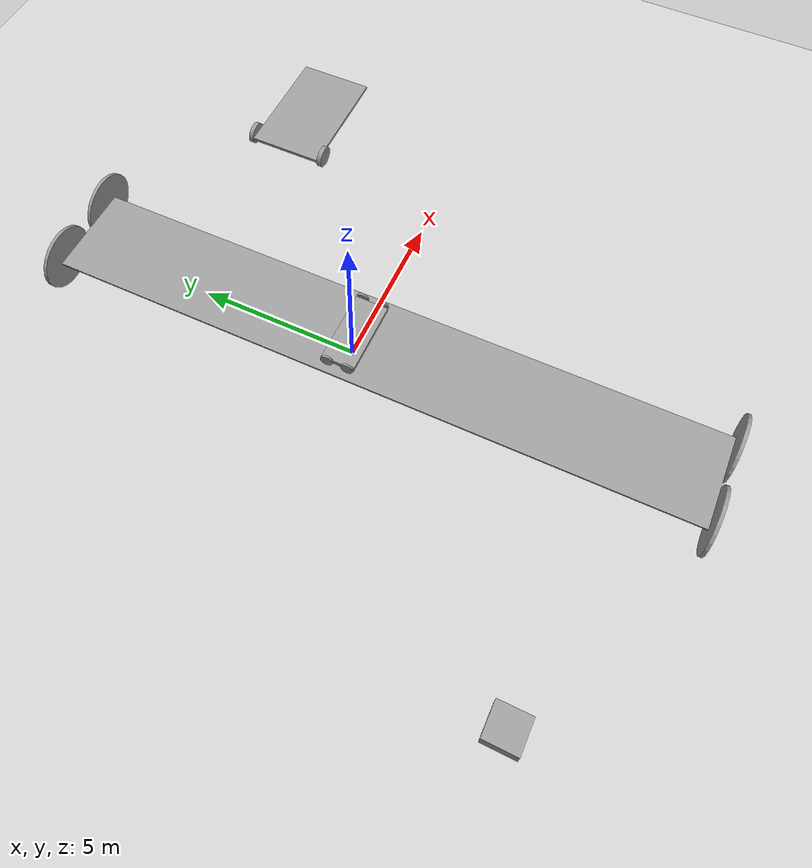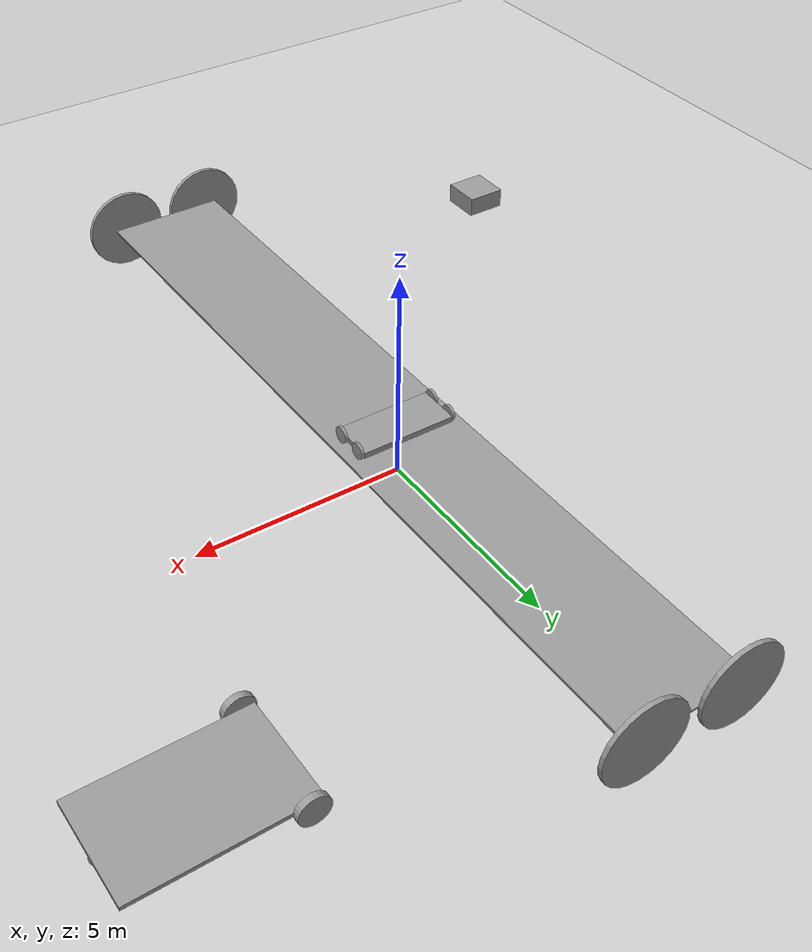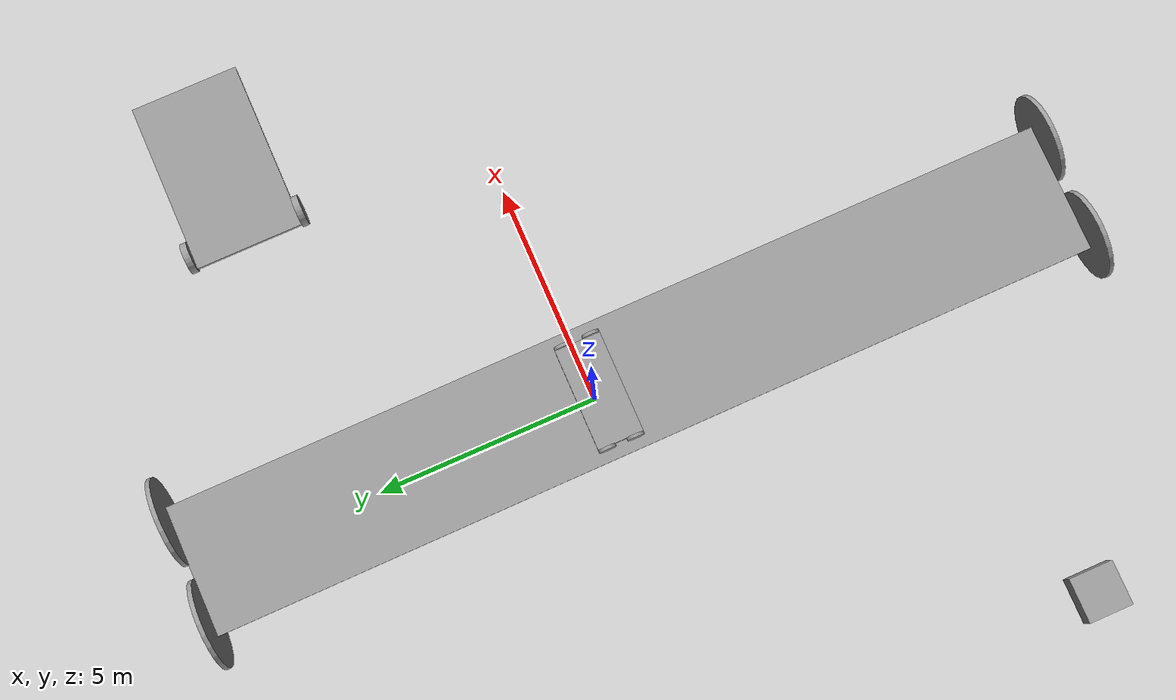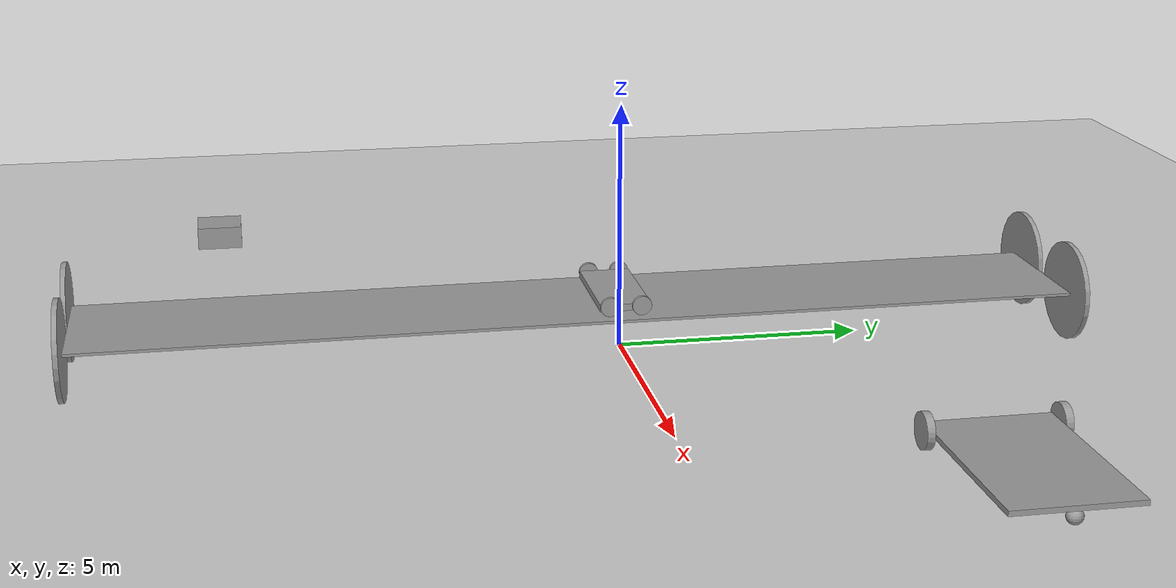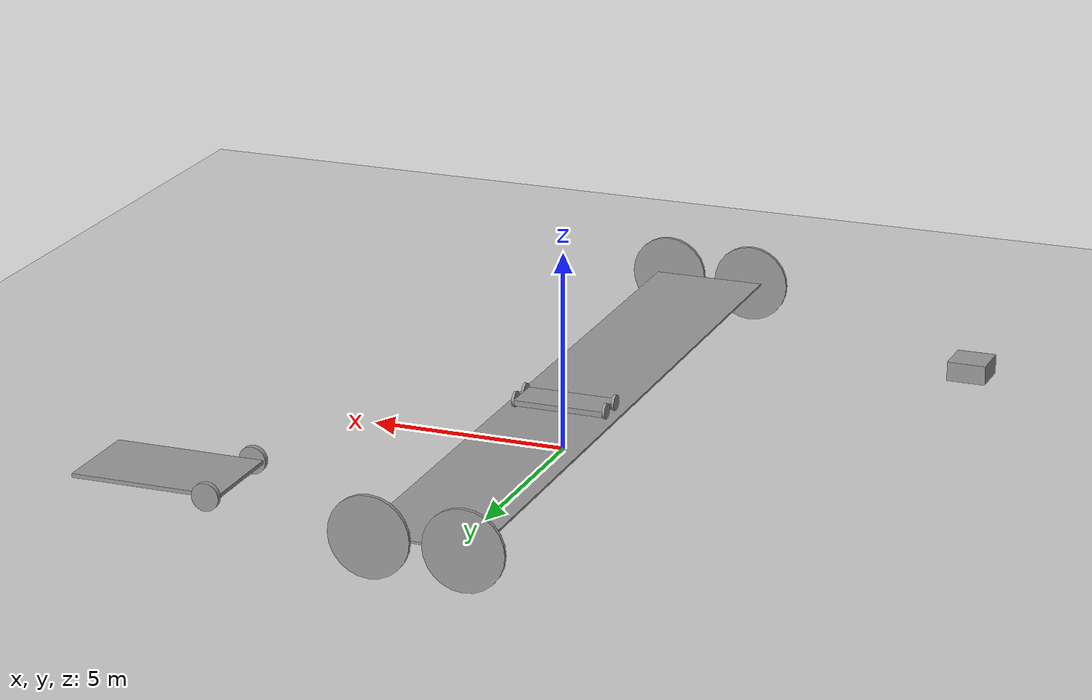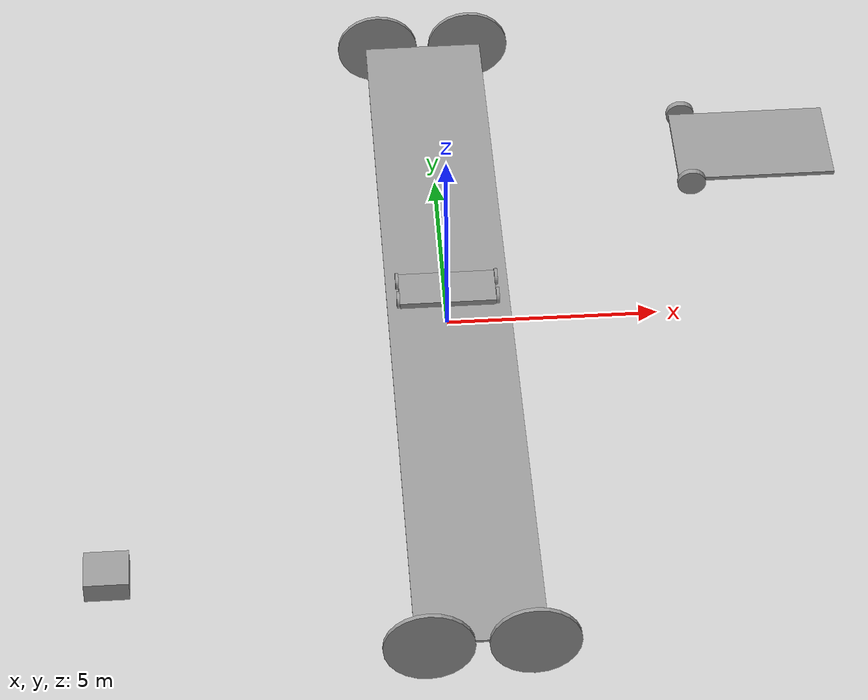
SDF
<sdf version="1.7">
 <world name="default">
  <light name="sun" type="directional">
   <pose>0 0 10 0 -0 0</pose>
   <diffuse>0.8 0.8 0.8 1</diffuse>
   <specular>0.2 0.2 0.2 1</specular>
   <attenuation>
    <range>1000</range>
    <constant>0.9</constant>
    <linear>0.01</linear>
    <quadratic>0.001</quadratic>
   </attenuation>
   <direction>-0.5 0.1 -0.9</direction>
   <spot><inner_angle>0</inner_angle><outer_angle>0</outer_angle><falloff>0</falloff></spot>
  </light>
  <model name="ground_plane">
   <static>1</static>
   <link name="link">
    <collision name="collision">
     <geometry><plane><normal>0 0 1</normal><size>100 100</size></plane></geometry>
     <surface>
      <contact><collide_bitmask>65535</collide_bitmask></contact>
      <friction><ode><mu>100</mu><mu2>50</mu2></ode></friction>
     </surface>
    </collision>
    <visual name="visual">
     <cast_shadows>0</cast_shadows>
     <geometry><plane><normal>0 0 1</normal><size>100 100</size></plane></geometry>
     <material>
      <script><uri>file://media/materials/scripts/gazebo.material</uri><name>Gazebo/Grey</name></script>
     </material>
    </visual>
   </link>
  </model>
  <gravity>0 0 -9.8</gravity>
  <magnetic_field>6e-06 2.3e-05 -4.2e-05</magnetic_field>
  <atmosphere type="adiabatic"/>
  <physics type="ode">
   <max_step_size>0.001</max_step_size>
   <real_time_factor>1</real_time_factor>
   <real_time_update_rate>1000</real_time_update_rate>
  </physics>
  <scene><ambient>0.4 0.4 0.4 1</ambient><background>0.7 0.7 0.7 1</background><shadows>1</shadows></scene>
  <spherical_coordinates>
   <surface_model>EARTH_WGS84</surface_model>
   <latitude_deg>0</latitude_deg>
   <longitude_deg>0</longitude_deg>
   <elevation>0</elevation>
   <heading_deg>0</heading_deg>
  </spherical_coordinates>
  <model name="cart">
   <link name="Cart">
    <inertial>
     <mass>0.323225</mass>
     <inertia>
      <ixx>0.0288014</ixx>
      <ixy>0</ixy>
      <ixz>0</ixz>
      <iyy>0.139331</iyy>
      <iyz>0</iyz>
      <izz>0.167093</izz>
     </inertia>
    </inertial>
    <pose>1e-06 -0 0.087098 0 -0 0</pose>
    <visual name="visual">
     <geometry><box><size>2.27013 1.02468 0.138944</size></box></geometry>
     <material>
      <lighting>1</lighting>
      <script><uri>file://media/materials/scripts/gazebo.material</uri><name>Gazebo/Grey</name></script>
      <shader type="pixel"><normal_map>__default__</normal_map></shader>
      <ambient>0.3 0.3 0.3 1</ambient>
      <diffuse>0.7 0.7 0.7 1</diffuse>
      <specular>0.01 0.01 0.01 1</specular>
      <emissive>0 0 0 1</emissive>
     </material>
    </visual>
    <collision name="collision">
     <geometry><box><size>2.27013 1.02468 0.138944</size></box></geometry>
     <surface>
      <friction>
       <ode><mu>1</mu><mu2>1</mu2><fdir1>0 0 0</fdir1><slip1>0</slip1><slip2>0</slip2></ode>
       <torsional>
        <coefficient>1</coefficient>
        <patch_radius>0</patch_radius>
        <surface_radius>0</surface_radius>
        <use_patch_radius>1</use_patch_radius>
        <ode><slip>0</slip></ode>
       </torsional>
      </friction>
      <bounce><restitution_coefficient>0</restitution_coefficient><threshold>1e+06</threshold></bounce>
      <contact>
       <collide_without_contact>0</collide_without_contact>
       <collide_without_contact_bitmask>1</collide_without_contact_bitmask>
       <collide_bitmask>1</collide_bitmask>
       <ode>
        <soft_cfm>0</soft_cfm>
        <soft_erp>0.2</soft_erp>
        <kp>1e+13</kp>
        <kd>1</kd>
        <max_vel>0.01</max_vel>
        <min_depth>0</min_depth>
       </ode>
       <bullet>
        <split_impulse>1</split_impulse>
        <split_impulse_penetration_threshold>-0.01</split_impulse_penetration_threshold>
        <soft_cfm>0</soft_cfm>
        <soft_erp>0.2</soft_erp>
        <kp>1e+13</kp>
        <kd>1</kd>
       </bullet>
      </contact>
     </surface>
    </collision>
   </link>
   <link name="LeftWheelFree">
    <inertial>
     <mass>0.0104167</mass>
     <inertia>
      <ixx>0.000101722</ixx>
      <ixy>0</ixy>
      <ixz>0</ixz>
      <iyy>0.000101722</iyy>
      <iyz>0</iyz>
      <izz>0.000195047</izz>
     </inertia>
    </inertial>
    <pose>1.16984 0.318823 0.122361 1e-06 1.57079 1e-06</pose>
    <visual name="visual">
     <geometry><cylinder><radius>0.193517</radius><length>0.0695489</length></cylinder></geometry>
     <material>
      <lighting>1</lighting>
      <script><uri>file://media/materials/scripts/gazebo.material</uri><name>Gazebo/Grey</name></script>
      <shader type="pixel"><normal_map>__default__</normal_map></shader>
      <ambient>0.3 0.3 0.3 1</ambient>
      <diffuse>0.7 0.7 0.7 1</diffuse>
      <specular>0.01 0.01 0.01 1</specular>
      <emissive>0 0 0 1</emissive>
     </material>
    </visual>
    <collision name="collision">
     <geometry><cylinder><radius>0.193517</radius><length>0.069549</length></cylinder></geometry>
     <surface>
      <friction>
       <ode><mu>1</mu><mu2>1</mu2><fdir1>0 0 0</fdir1><slip1>0</slip1><slip2>0</slip2></ode>
       <torsional>
        <coefficient>1</coefficient>
        <patch_radius>0</patch_radius>
        <surface_radius>0</surface_radius>
        <use_patch_radius>1</use_patch_radius>
        <ode><slip>0</slip></ode>
       </torsional>
      </friction>
      <bounce><restitution_coefficient>0</restitution_coefficient><threshold>1e+06</threshold></bounce>
      <contact>
       <collide_without_contact>0</collide_without_contact>
       <collide_without_contact_bitmask>1</collide_without_contact_bitmask>
       <collide_bitmask>1</collide_bitmask>
       <ode>
        <soft_cfm>0</soft_cfm>
        <soft_erp>0.2</soft_erp>
        <kp>1e+13</kp>
        <kd>1</kd>
        <max_vel>0.01</max_vel>
        <min_depth>0</min_depth>
       </ode>
       <bullet>
        <split_impulse>1</split_impulse>
        <split_impulse_penetration_threshold>-0.01</split_impulse_penetration_threshold>
        <soft_cfm>0</soft_cfm>
        <soft_erp>0.2</soft_erp>
        <kp>1e+13</kp>
        <kd>1</kd>
       </bullet>
      </contact>
     </surface>
    </collision>
   </link>
   <link name="LeftWheelMotor">
    <inertial>
     <mass>0.0104167</mass>
     <inertia>
      <ixx>0.000101722</ixx>
      <ixy>0</ixy>
      <ixz>0</ixz>
      <iyy>0.000101722</iyy>
      <iyz>0</iyz>
      <izz>0.000195047</izz>
     </inertia>
    </inertial>
    <pose>1.16984 -0.318823 0.122362 1e-06 1.57079 1e-06</pose>
    <visual name="visual">
     <geometry><cylinder><radius>0.193517</radius><length>0.0695489</length></cylinder></geometry>
     <material>
      <lighting>1</lighting>
      <script><uri>file://media/materials/scripts/gazebo.material</uri><name>Gazebo/Grey</name></script>
      <shader type="pixel"><normal_map>__default__</normal_map></shader>
      <ambient>0.3 0.3 0.3 1</ambient>
      <diffuse>0.7 0.7 0.7 1</diffuse>
      <specular>0.01 0.01 0.01 1</specular>
      <emissive>0 0 0 1</emissive>
     </material>
    </visual>
    <collision name="collision">
     <geometry><cylinder><radius>0.193517</radius><length>0.069549</length></cylinder></geometry>
     <surface>
      <friction>
       <ode><mu>1</mu><mu2>1</mu2><fdir1>0 0 0</fdir1><slip1>0</slip1><slip2>0</slip2></ode>
       <torsional>
        <coefficient>1</coefficient>
        <patch_radius>0</patch_radius>
        <surface_radius>0</surface_radius>
        <use_patch_radius>1</use_patch_radius>
        <ode><slip>0</slip></ode>
       </torsional>
      </friction>
      <bounce><restitution_coefficient>0</restitution_coefficient><threshold>1e+06</threshold></bounce>
      <contact>
       <collide_without_contact>0</collide_without_contact>
       <collide_without_contact_bitmask>1</collide_without_contact_bitmask>
       <collide_bitmask>1</collide_bitmask>
       <ode>
        <soft_cfm>0</soft_cfm>
        <soft_erp>0.2</soft_erp>
        <kp>1e+13</kp>
        <kd>1</kd>
        <max_vel>0.01</max_vel>
        <min_depth>0</min_depth>
       </ode>
       <bullet>
        <split_impulse>1</split_impulse>
        <split_impulse_penetration_threshold>-0.01</split_impulse_penetration_threshold>
        <soft_cfm>0</soft_cfm>
        <soft_erp>0.2</soft_erp>
        <kp>1e+13</kp>
        <kd>1</kd>
       </bullet>
      </contact>
     </surface>
    </collision>
   </link>
   <link name="RightWheelFree">
    <inertial>
     <mass>0.0104167</mass>
     <inertia>
      <ixx>0.000101722</ixx>
      <ixy>0</ixy>
      <ixz>0</ixz>
      <iyy>0.000101722</iyy>
      <iyz>0</iyz>
      <izz>0.000195047</izz>
     </inertia>
    </inertial>
    <pose>-1.16984 0.318823 0.122362 1e-06 1.57079 1e-06</pose>
    <visual name="visual">
     <geometry><cylinder><radius>0.193517</radius><length>0.0695489</length></cylinder></geometry>
     <material>
      <lighting>1</lighting>
      <script><uri>file://media/materials/scripts/gazebo.material</uri><name>Gazebo/Grey</name></script>
      <shader type="pixel"><normal_map>__default__</normal_map></shader>
      <ambient>0.3 0.3 0.3 1</ambient>
      <diffuse>0.7 0.7 0.7 1</diffuse>
      <specular>0.01 0.01 0.01 1</specular>
      <emissive>0 0 0 1</emissive>
     </material>
    </visual>
    <collision name="collision">
     <geometry><cylinder><radius>0.193517</radius><length>0.069549</length></cylinder></geometry>
     <surface>
      <friction>
       <ode><mu>1</mu><mu2>1</mu2><fdir1>0 0 0</fdir1><slip1>0</slip1><slip2>0</slip2></ode>
       <torsional>
        <coefficient>1</coefficient>
        <patch_radius>0</patch_radius>
        <surface_radius>0</surface_radius>
        <use_patch_radius>1</use_patch_radius>
        <ode><slip>0</slip></ode>
       </torsional>
      </friction>
      <bounce><restitution_coefficient>0</restitution_coefficient><threshold>1e+06</threshold></bounce>
      <contact>
       <collide_without_contact>0</collide_without_contact>
       <collide_without_contact_bitmask>1</collide_without_contact_bitmask>
       <collide_bitmask>1</collide_bitmask>
       <ode>
        <soft_cfm>0</soft_cfm>
        <soft_erp>0.2</soft_erp>
        <kp>1e+13</kp>
        <kd>1</kd>
        <max_vel>0.01</max_vel>
        <min_depth>0</min_depth>
       </ode>
       <bullet>
        <split_impulse>1</split_impulse>
        <split_impulse_penetration_threshold>-0.01</split_impulse_penetration_threshold>
        <soft_cfm>0</soft_cfm>
        <soft_erp>0.2</soft_erp>
        <kp>1e+13</kp>
        <kd>1</kd>
       </bullet>
      </contact>
     </surface>
    </collision>
   </link>
   <link name="RightWheelMotor">
    <inertial>
     <mass>0.0104167</mass>
     <inertia>
      <ixx>0.000101722</ixx>
      <ixy>0</ixy>
      <ixz>0</ixz>
      <iyy>0.000101722</iyy>
      <iyz>0</iyz>
      <izz>0.000195047</izz>
     </inertia>
    </inertial>
    <pose>-1.16984 -0.318823 0.122362 1e-06 1.57079 1e-06</pose>
    <visual name="visual">
     <geometry><cylinder><radius>0.193517</radius><length>0.0695489</length></cylinder></geometry>
     <material>
      <lighting>1</lighting>
      <script><uri>file://media/materials/scripts/gazebo.material</uri><name>Gazebo/Grey</name></script>
      <shader type="pixel"><normal_map>__default__</normal_map></shader>
      <ambient>0.3 0.3 0.3 1</ambient>
      <diffuse>0.7 0.7 0.7 1</diffuse>
      <specular>0.01 0.01 0.01 1</specular>
      <emissive>0 0 0 1</emissive>
     </material>
    </visual>
    <collision name="collision">
     <geometry><cylinder><radius>0.193517</radius><length>0.069549</length></cylinder></geometry>
     <surface>
      <friction>
       <ode><mu>1</mu><mu2>1</mu2><fdir1>0 0 0</fdir1><slip1>0</slip1><slip2>0</slip2></ode>
       <torsional>
        <coefficient>1</coefficient>
        <patch_radius>0</patch_radius>
        <surface_radius>0</surface_radius>
        <use_patch_radius>1</use_patch_radius>
        <ode><slip>0</slip></ode>
       </torsional>
      </friction>
      <bounce><restitution_coefficient>0</restitution_coefficient><threshold>1e+06</threshold></bounce>
      <contact>
       <collide_without_contact>0</collide_without_contact>
       <collide_without_contact_bitmask>1</collide_without_contact_bitmask>
       <collide_bitmask>1</collide_bitmask>
       <ode>
        <soft_cfm>0</soft_cfm>
        <soft_erp>0.2</soft_erp>
        <kp>1e+13</kp>
        <kd>1</kd>
        <max_vel>0.01</max_vel>
        <min_depth>0</min_depth>
       </ode>
       <bullet>
        <split_impulse>1</split_impulse>
        <split_impulse_penetration_threshold>-0.01</split_impulse_penetration_threshold>
        <soft_cfm>0</soft_cfm>
        <soft_erp>0.2</soft_erp>
        <kp>1e+13</kp>
        <kd>1</kd>
       </bullet>
      </contact>
     </surface>
    </collision>
   </link>
   <joint name="Cart_LeftWheelFree" type="revolute">
    <parent>Cart</parent>
    <child>LeftWheelFree</child>
    <axis>
     <xyz>0 0 1</xyz>
     <limit>
      <lower>-1.79769e+308</lower>
      <upper>1.79769e+308</upper>
      <effort>-1</effort>
      <velocity>-1</velocity>
     </limit>
     <dynamics>
      <spring_reference>0</spring_reference>
      <spring_stiffness>0</spring_stiffness>
      <damping>0</damping>
      <friction>0</friction>
     </dynamics>
    </axis>
    <physics>
     <ode><limit><cfm>0</cfm><erp>0.2</erp></limit><suspension><cfm>0</cfm><erp>0.2</erp></suspension></ode>
    </physics>
   </joint>
   <joint name="Cart_LeftWheelMotor" type="revolute">
    <parent>Cart</parent>
    <child>LeftWheelMotor</child>
    <axis>
     <xyz>0 0 1</xyz>
     <limit>
      <lower>-1.79769e+308</lower>
      <upper>1.79769e+308</upper>
      <effort>-1</effort>
      <velocity>-1</velocity>
     </limit>
     <dynamics>
      <spring_reference>0</spring_reference>
      <spring_stiffness>0</spring_stiffness>
      <damping>0</damping>
      <friction>0</friction>
     </dynamics>
    </axis>
    <physics>
     <ode><limit><cfm>0</cfm><erp>0.2</erp></limit><suspension><cfm>0</cfm><erp>0.2</erp></suspension></ode>
    </physics>
   </joint>
   <joint name="Cart_RightWheelFree" type="revolute">
    <parent>Cart</parent>
    <child>RightWheelFree</child>
    <axis>
     <xyz>0 0 1</xyz>
     <limit>
      <lower>-1.79769e+308</lower>
      <upper>1.79769e+308</upper>
      <effort>-1</effort>
      <velocity>-1</velocity>
     </limit>
     <dynamics>
      <spring_reference>0</spring_reference>
      <spring_stiffness>0</spring_stiffness>
      <damping>0</damping>
      <friction>0</friction>
     </dynamics>
    </axis>
    <physics>
     <ode><limit><cfm>0</cfm><erp>0.2</erp></limit><suspension><cfm>0</cfm><erp>0.2</erp></suspension></ode>
    </physics>
   </joint>
   <joint name="Cart_RightWheelMotor" type="revolute">
    <parent>Cart</parent>
    <child>RightWheelMotor</child>
    <axis>
     <xyz>0 0 1</xyz>
     <limit>
      <lower>-1.79769e+308</lower>
      <upper>1.79769e+308</upper>
      <effort>-1</effort>
      <velocity>-1</velocity>
     </limit>
     <dynamics>
      <spring_reference>0</spring_reference>
      <spring_stiffness>0</spring_stiffness>
      <damping>0</damping>
      <friction>0</friction>
     </dynamics>
    </axis>
    <physics>
     <ode><limit><cfm>0</cfm><erp>0.2</erp></limit><suspension><cfm>0</cfm><erp>0.2</erp></suspension></ode>
    </physics>
   </joint>
   <static>0</static>
   <plugin name="differential_drive_controller" filename="libgazebo_ros_diff_drive.so">
    <ros><namespace>/cart</namespace></ros>
    <left_joint>Cart_LeftWheelMotor</left_joint>
    <right_joint>Cart_RightWheelMotor</right_joint>
    <wheel_separation>1</wheel_separation>
    <wheel_diameter>0.3</wheel_diameter>
    <publish_wheel_tf>1</publish_wheel_tf>
    <odometryTopic>odom</odometryTopic>
    <odometryFrame>odom</odometryFrame>
    <robotBaseFrame>base_footprint</robotBaseFrame>
    <publish_odom>1</publish_odom>
    <publish_odom_tf>1</publish_odom_tf>
    <publish_wheel_tf>1</publish_wheel_tf>
   </plugin>
   <pose>-0.010487 -0.10758 1.09961 2e-06 -1e-05 0.000389</pose>
  </model>
  <model name="crane2">
   <link name="Bridge">
    <inertial>
     <mass>0.746587</mass>
     <inertia><ixx>1.27709</ixx><ixy>0</ixy><ixz>0</ixz><iyy>0.520424</iyy><iyz>0</iyz><izz>1.79711</izz></inertia>
    </inertial>
    <pose>-1e-06 -0.039746 0 0 -0 0</pose>
    <visual name="visual">
     <geometry><box><size>2.89164 20 0.056992</size></box></geometry>
     <material>
      <lighting>1</lighting>
      <script><uri>file://media/materials/scripts/gazebo.material</uri><name>Gazebo/Grey</name></script>
      <shader type="pixel"><normal_map>__default__</normal_map></shader>
      <emissive>0 0 0 1</emissive>
      <ambient>0.3 0.3 0.3 1</ambient>
      <diffuse>0.7 0.7 0.7 1</diffuse>
      <specular>0.01 0.01 0.01 1</specular>
     </material>
    </visual>
    <collision name="collision">
     <geometry><box><size>2.89164 20 0.056992</size></box></geometry>
     <surface>
      <friction>
       <ode><mu>1</mu><mu2>1</mu2><fdir1>0 0 0</fdir1><slip1>0</slip1><slip2>0</slip2></ode>
       <torsional>
        <coefficient>1</coefficient>
        <patch_radius>0</patch_radius>
        <surface_radius>0</surface_radius>
        <use_patch_radius>1</use_patch_radius>
        <ode><slip>0</slip></ode>
       </torsional>
      </friction>
      <bounce><restitution_coefficient>0</restitution_coefficient><threshold>1e+06</threshold></bounce>
      <contact>
       <collide_without_contact>0</collide_without_contact>
       <collide_without_contact_bitmask>1</collide_without_contact_bitmask>
       <collide_bitmask>1</collide_bitmask>
       <ode>
        <soft_cfm>0</soft_cfm>
        <soft_erp>0.2</soft_erp>
        <kp>1e+13</kp>
        <kd>1</kd>
        <max_vel>0.01</max_vel>
        <min_depth>0</min_depth>
       </ode>
       <bullet>
        <split_impulse>1</split_impulse>
        <split_impulse_penetration_threshold>-0.01</split_impulse_penetration_threshold>
        <soft_cfm>0</soft_cfm>
        <soft_erp>0.2</soft_erp>
        <kp>1e+13</kp>
        <kd>1</kd>
       </bullet>
      </contact>
     </surface>
    </collision>
   </link>
   <link name="LeftWheelFree">
    <inertial>
     <mass>0.0041796</mass>
     <inertia>
      <ixx>1.439e-05</ixx>
      <ixy>0</ixy>
      <ixz>0</ixz>
      <iyy>1.439e-05</iyy>
      <iyz>0</iyz>
      <izz>2.177e-05</izz>
     </inertia>
    </inertial>
    <pose>-1.14582 10 0 1.5707 -0 0</pose>
    <visual name="visual">
     <geometry><cylinder><radius>1</radius><length>0.10028</length></cylinder></geometry>
     <material>
      <lighting>1</lighting>
      <script><uri>file://media/materials/scripts/gazebo.material</uri><name>Gazebo/Grey</name></script>
      <shader type="pixel"><normal_map>__default__</normal_map></shader>
      <ambient>0.3 0.3 0.3 1</ambient>
      <diffuse>0.7 0.7 0.7 1</diffuse>
      <specular>0.01 0.01 0.01 1</specular>
      <emissive>0 0 0 1</emissive>
     </material>
    </visual>
    <collision name="collision">
     <geometry><cylinder><radius>1</radius><length>0.10028</length></cylinder></geometry>
     <surface>
      <friction>
       <ode><mu>1</mu><mu2>1</mu2><fdir1>0 0 0</fdir1><slip1>0</slip1><slip2>0</slip2></ode>
       <torsional>
        <coefficient>1</coefficient>
        <patch_radius>0</patch_radius>
        <surface_radius>0</surface_radius>
        <use_patch_radius>1</use_patch_radius>
        <ode><slip>0</slip></ode>
       </torsional>
      </friction>
      <bounce><restitution_coefficient>0</restitution_coefficient><threshold>1e+06</threshold></bounce>
      <contact>
       <collide_without_contact>0</collide_without_contact>
       <collide_without_contact_bitmask>1</collide_without_contact_bitmask>
       <collide_bitmask>1</collide_bitmask>
       <ode>
        <soft_cfm>0</soft_cfm>
        <soft_erp>0.2</soft_erp>
        <kp>1e+13</kp>
        <kd>1</kd>
        <max_vel>0.01</max_vel>
        <min_depth>0</min_depth>
       </ode>
       <bullet>
        <split_impulse>1</split_impulse>
        <split_impulse_penetration_threshold>-0.01</split_impulse_penetration_threshold>
        <soft_cfm>0</soft_cfm>
        <soft_erp>0.2</soft_erp>
        <kp>1e+13</kp>
        <kd>1</kd>
       </bullet>
      </contact>
     </surface>
    </collision>
   </link>
   <link name="LeftWheelMotor">
    <inertial>
     <mass>0.0041796</mass>
     <inertia>
      <ixx>1.439e-05</ixx>
      <ixy>0</ixy>
      <ixz>0</ixz>
      <iyy>1.439e-05</iyy>
      <iyz>0</iyz>
      <izz>2.177e-05</izz>
     </inertia>
    </inertial>
    <pose>1.14582 10 -0 1.5707 -0 0</pose>
    <visual name="visual">
     <geometry><cylinder><radius>1</radius><length>0.10028</length></cylinder></geometry>
     <material>
      <lighting>1</lighting>
      <script><uri>file://media/materials/scripts/gazebo.material</uri><name>Gazebo/Grey</name></script>
      <shader type="pixel"><normal_map>__default__</normal_map></shader>
      <ambient>0.3 0.3 0.3 1</ambient>
      <diffuse>0.7 0.7 0.7 1</diffuse>
      <specular>0.01 0.01 0.01 1</specular>
      <emissive>0 0 0 1</emissive>
     </material>
    </visual>
    <collision name="collision">
     <geometry><cylinder><radius>1</radius><length>0.10028</length></cylinder></geometry>
     <surface>
      <friction>
       <ode><mu>1</mu><mu2>1</mu2><fdir1>0 0 0</fdir1><slip1>0</slip1><slip2>0</slip2></ode>
       <torsional>
        <coefficient>1</coefficient>
        <patch_radius>0</patch_radius>
        <surface_radius>0</surface_radius>
        <use_patch_radius>1</use_patch_radius>
        <ode><slip>0</slip></ode>
       </torsional>
      </friction>
      <bounce><restitution_coefficient>0</restitution_coefficient><threshold>1e+06</threshold></bounce>
      <contact>
       <collide_without_contact>0</collide_without_contact>
       <collide_without_contact_bitmask>1</collide_without_contact_bitmask>
       <collide_bitmask>1</collide_bitmask>
       <ode>
        <soft_cfm>0</soft_cfm>
        <soft_erp>0.2</soft_erp>
        <kp>1e+13</kp>
        <kd>1</kd>
        <max_vel>0.01</max_vel>
        <min_depth>0</min_depth>
       </ode>
       <bullet>
        <split_impulse>1</split_impulse>
        <split_impulse_penetration_threshold>-0.01</split_impulse_penetration_threshold>
        <soft_cfm>0</soft_cfm>
        <soft_erp>0.2</soft_erp>
        <kp>1e+13</kp>
        <kd>1</kd>
       </bullet>
      </contact>
     </surface>
    </collision>
   </link>
   <link name="RightWheelFree">
    <inertial>
     <mass>0.0041796</mass>
     <inertia>
      <ixx>1.439e-05</ixx>
      <ixy>0</ixy>
      <ixz>0</ixz>
      <iyy>1.439e-05</iyy>
      <iyz>0</iyz>
      <izz>2.177e-05</izz>
     </inertia>
    </inertial>
    <pose>-1.14582 -10.1003 -0 1.5707 -0 0</pose>
    <visual name="visual">
     <geometry><cylinder><radius>1</radius><length>0.10028</length></cylinder></geometry>
     <material>
      <lighting>1</lighting>
      <script><uri>file://media/materials/scripts/gazebo.material</uri><name>Gazebo/Grey</name></script>
      <shader type="pixel"><normal_map>__default__</normal_map></shader>
      <ambient>0.3 0.3 0.3 1</ambient>
      <diffuse>0.7 0.7 0.7 1</diffuse>
      <specular>0.01 0.01 0.01 1</specular>
      <emissive>0 0 0 1</emissive>
     </material>
    </visual>
    <collision name="collision">
     <geometry><cylinder><radius>1</radius><length>0.10028</length></cylinder></geometry>
     <surface>
      <friction>
       <ode><mu>1</mu><mu2>1</mu2><fdir1>0 0 0</fdir1><slip1>0</slip1><slip2>0</slip2></ode>
       <torsional>
        <coefficient>1</coefficient>
        <patch_radius>0</patch_radius>
        <surface_radius>0</surface_radius>
        <use_patch_radius>1</use_patch_radius>
        <ode><slip>0</slip></ode>
       </torsional>
      </friction>
      <bounce><restitution_coefficient>0</restitution_coefficient><threshold>1e+06</threshold></bounce>
      <contact>
       <collide_without_contact>0</collide_without_contact>
       <collide_without_contact_bitmask>1</collide_without_contact_bitmask>
       <collide_bitmask>1</collide_bitmask>
       <ode>
        <soft_cfm>0</soft_cfm>
        <soft_erp>0.2</soft_erp>
        <kp>1e+13</kp>
        <kd>1</kd>
        <max_vel>0.01</max_vel>
        <min_depth>0</min_depth>
       </ode>
       <bullet>
        <split_impulse>1</split_impulse>
        <split_impulse_penetration_threshold>-0.01</split_impulse_penetration_threshold>
        <soft_cfm>0</soft_cfm>
        <soft_erp>0.2</soft_erp>
        <kp>1e+13</kp>
        <kd>1</kd>
       </bullet>
      </contact>
     </surface>
    </collision>
   </link>
   <link name="RightWheelMotor">
    <inertial>
     <mass>0.0041796</mass>
     <inertia>
      <ixx>1.439e-05</ixx>
      <ixy>0</ixy>
      <ixz>0</ixz>
      <iyy>1.439e-05</iyy>
      <iyz>0</iyz>
      <izz>2.177e-05</izz>
     </inertia>
    </inertial>
    <pose>1.14582 -10.1003 0 1.5707 -0 0</pose>
    <visual name="visual">
     <geometry><cylinder><radius>1</radius><length>0.10028</length></cylinder></geometry>
     <material>
      <lighting>1</lighting>
      <script><uri>file://media/materials/scripts/gazebo.material</uri><name>Gazebo/Grey</name></script>
      <shader type="pixel"><normal_map>__default__</normal_map></shader>
      <ambient>0.3 0.3 0.3 1</ambient>
      <diffuse>0.7 0.7 0.7 1</diffuse>
      <specular>0.01 0.01 0.01 1</specular>
      <emissive>0 0 0 1</emissive>
     </material>
    </visual>
    <collision name="collision">
     <geometry><cylinder><radius>1</radius><length>0.10028</length></cylinder></geometry>
     <surface>
      <friction>
       <ode><mu>1</mu><mu2>1</mu2><fdir1>0 0 0</fdir1><slip1>0</slip1><slip2>0</slip2></ode>
       <torsional>
        <coefficient>1</coefficient>
        <patch_radius>0</patch_radius>
        <surface_radius>0</surface_radius>
        <use_patch_radius>1</use_patch_radius>
        <ode><slip>0</slip></ode>
       </torsional>
      </friction>
      <bounce><restitution_coefficient>0</restitution_coefficient><threshold>1e+06</threshold></bounce>
      <contact>
       <collide_without_contact>0</collide_without_contact>
       <collide_without_contact_bitmask>1</collide_without_contact_bitmask>
       <collide_bitmask>1</collide_bitmask>
       <ode>
        <soft_cfm>0</soft_cfm>
        <soft_erp>0.2</soft_erp>
        <kp>1e+13</kp>
        <kd>1</kd>
        <max_vel>0.01</max_vel>
        <min_depth>0</min_depth>
       </ode>
       <bullet>
        <split_impulse>1</split_impulse>
        <split_impulse_penetration_threshold>-0.01</split_impulse_penetration_threshold>
        <soft_cfm>0</soft_cfm>
        <soft_erp>0.2</soft_erp>
        <kp>1e+13</kp>
        <kd>1</kd>
       </bullet>
      </contact>
     </surface>
    </collision>
   </link>
   <joint name="Bridge_LeftWheelFree" type="revolute">
    <parent>Bridge</parent>
    <child>LeftWheelFree</child>
    <axis>
     <xyz>0 0 1</xyz>
     <limit>
      <lower>-1.79769e+308</lower>
      <upper>1.79769e+308</upper>
      <effort>-1</effort>
      <velocity>-1</velocity>
     </limit>
     <dynamics>
      <spring_reference>0</spring_reference>
      <spring_stiffness>0</spring_stiffness>
      <damping>0</damping>
      <friction>0</friction>
     </dynamics>
    </axis>
    <physics>
     <ode><limit><cfm>0</cfm><erp>0.2</erp></limit><suspension><cfm>0</cfm><erp>0.2</erp></suspension></ode>
    </physics>
   </joint>
   <joint name="Bridge_LeftWheelMotor" type="revolute">
    <parent>Bridge</parent>
    <child>LeftWheelMotor</child>
    <axis>
     <xyz>0 0 1</xyz>
     <limit>
      <lower>-1.79769e+308</lower>
      <upper>1.79769e+308</upper>
      <effort>-1</effort>
      <velocity>-1</velocity>
     </limit>
     <dynamics>
      <spring_reference>0</spring_reference>
      <spring_stiffness>0</spring_stiffness>
      <damping>0</damping>
      <friction>0</friction>
     </dynamics>
    </axis>
    <physics>
     <ode><limit><cfm>0</cfm><erp>0.2</erp></limit><suspension><cfm>0</cfm><erp>0.2</erp></suspension></ode>
    </physics>
   </joint>
   <joint name="Bridge_RightWheelFree" type="revolute">
    <parent>Bridge</parent>
    <child>RightWheelFree</child>
    <axis>
     <xyz>0 0 1</xyz>
     <limit>
      <lower>-1.79769e+308</lower>
      <upper>1.79769e+308</upper>
      <effort>-1</effort>
      <velocity>-1</velocity>
     </limit>
     <dynamics>
      <spring_reference>0</spring_reference>
      <spring_stiffness>0</spring_stiffness>
      <damping>0</damping>
      <friction>0</friction>
     </dynamics>
    </axis>
    <physics>
     <ode><limit><cfm>0</cfm><erp>0.2</erp></limit><suspension><cfm>0</cfm><erp>0.2</erp></suspension></ode>
    </physics>
   </joint>
   <joint name="Bridge_RightWheelMotor" type="revolute">
    <parent>Bridge</parent>
    <child>RightWheelMotor</child>
    <axis>
     <xyz>0 0 1</xyz>
     <limit>
      <lower>-1.79769e+308</lower>
      <upper>1.79769e+308</upper>
      <effort>-1</effort>
      <velocity>-1</velocity>
     </limit>
     <dynamics>
      <spring_reference>0</spring_reference>
      <spring_stiffness>0</spring_stiffness>
      <damping>0</damping>
      <friction>0</friction>
     </dynamics>
    </axis>
    <physics>
     <ode><limit><cfm>0</cfm><erp>0.2</erp></limit><suspension><cfm>0</cfm><erp>0.2</erp></suspension></ode>
    </physics>
   </joint>
   <static>0</static>
   <plugin name="differential_drive_controller" filename="libgazebo_ros_diff_drive.so">
    <ros><namespace>/bridge</namespace></ros>
    <left_joint>Bridge_LeftWheelMotor</left_joint>
    <right_joint>Bridge_RightWheelMotor</right_joint>
    <wheel_separation>1</wheel_separation>
    <wheel_diameter>1.3</wheel_diameter>
    <publish_wheel_tf>1</publish_wheel_tf>
    <odometryTopic>odom</odometryTopic>
    <odometryFrame>odom</odometryFrame>
    <robotBaseFrame>base_footprint</robotBaseFrame>
    <publish_odom>1</publish_odom>
    <publish_odom_tf>1</publish_odom_tf>
    <publish_wheel_tf>1</publish_wheel_tf>
   </plugin>
   <pose>0.004109 -0.857944 0.999971 1e-06 -9e-06 0.005531</pose>
  </model>
  <model name="car">
   <link name="car">
    <inertial>
     <mass>3.02223</mass>
     <inertia><ixx>1.51382</ixx><ixy>0</ixy><ixz>0</ixz><iyy>3.77707</iyy><iyz>0</iyz><izz>5.23861</izz></inertia>
    </inertial>
    <pose>1e-06 2e-06 -0 0 -0 0</pose>
    <visual name="visual">
     <geometry><box><size>3.85919 2.43042 0.1</size></box></geometry>
     <material>
      <lighting>1</lighting>
      <script><uri>file://media/materials/scripts/gazebo.material</uri><name>Gazebo/Grey</name></script>
      <shader type="pixel"><normal_map>__default__</normal_map></shader>
      <emissive>0 0 0 1</emissive>
      <ambient>0.3 0.3 0.3 1</ambient>
      <diffuse>0.7 0.7 0.7 1</diffuse>
      <specular>0.01 0.01 0.01 1</specular>
     </material>
    </visual>
    <collision name="collision">
     <geometry><box><size>3.85919 2.43042 0.1</size></box></geometry>
     <surface>
      <friction>
       <ode><mu>1</mu><mu2>1</mu2><fdir1>0 0 0</fdir1><slip1>0</slip1><slip2>0</slip2></ode>
       <torsional>
        <coefficient>1</coefficient>
        <patch_radius>0</patch_radius>
        <surface_radius>0</surface_radius>
        <use_patch_radius>1</use_patch_radius>
        <ode><slip>0</slip></ode>
       </torsional>
      </friction>
      <bounce><restitution_coefficient>0</restitution_coefficient><threshold>1e+06</threshold></bounce>
      <contact>
       <collide_without_contact>0</collide_without_contact>
       <collide_without_contact_bitmask>1</collide_without_contact_bitmask>
       <collide_bitmask>1</collide_bitmask>
       <ode>
        <soft_cfm>0</soft_cfm>
        <soft_erp>0.2</soft_erp>
        <kp>1e+13</kp>
        <kd>1</kd>
        <max_vel>0.01</max_vel>
        <min_depth>0</min_depth>
       </ode>
       <bullet>
        <split_impulse>1</split_impulse>
        <split_impulse_penetration_threshold>-0.01</split_impulse_penetration_threshold>
        <soft_cfm>0</soft_cfm>
        <soft_erp>0.2</soft_erp>
        <kp>1e+13</kp>
        <kd>1</kd>
       </bullet>
      </contact>
     </surface>
    </collision>
   </link>
   <link name="LeftWheelMotor">
    <inertial>
     <mass>0.10092</mass>
     <inertia>
      <ixx>0.00365905</ixx>
      <ixy>0</ixy>
      <ixz>0</ixz>
      <iyy>0.00365905</iyy>
      <iyz>0</iyz>
      <izz>0.00671321</izz>
     </inertia>
    </inertial>
    <pose>-1.62959 -1.29024 -0 1.5707 -0 0</pose>
    <visual name="visual">
     <geometry><cylinder><radius>0.35</radius><length>0.15</length></cylinder></geometry>
     <material>
      <lighting>1</lighting>
      <script><uri>file://media/materials/scripts/gazebo.material</uri><name>Gazebo/Grey</name></script>
      <shader type="pixel"><normal_map>__default__</normal_map></shader>
      <ambient>0.3 0.3 0.3 1</ambient>
      <diffuse>0.7 0.7 0.7 1</diffuse>
      <specular>0.01 0.01 0.01 1</specular>
      <emissive>0 0 0 1</emissive>
     </material>
    </visual>
    <collision name="collision">
     <geometry><cylinder><radius>0.35</radius><length>0.15</length></cylinder></geometry>
     <surface>
      <friction>
       <ode><mu>1</mu><mu2>1</mu2><fdir1>0 0 0</fdir1><slip1>0</slip1><slip2>0</slip2></ode>
       <torsional>
        <coefficient>1</coefficient>
        <patch_radius>0</patch_radius>
        <surface_radius>0</surface_radius>
        <use_patch_radius>1</use_patch_radius>
        <ode><slip>0</slip></ode>
       </torsional>
      </friction>
      <bounce><restitution_coefficient>0</restitution_coefficient><threshold>1e+06</threshold></bounce>
      <contact>
       <collide_without_contact>0</collide_without_contact>
       <collide_without_contact_bitmask>1</collide_without_contact_bitmask>
       <collide_bitmask>1</collide_bitmask>
       <ode>
        <soft_cfm>0</soft_cfm>
        <soft_erp>0.2</soft_erp>
        <kp>1e+13</kp>
        <kd>1</kd>
        <max_vel>0.01</max_vel>
        <min_depth>0</min_depth>
       </ode>
       <bullet>
        <split_impulse>1</split_impulse>
        <split_impulse_penetration_threshold>-0.01</split_impulse_penetration_threshold>
        <soft_cfm>0</soft_cfm>
        <soft_erp>0.2</soft_erp>
        <kp>1e+13</kp>
        <kd>1</kd>
       </bullet>
      </contact>
     </surface>
    </collision>
   </link>
   <link name="RightWheelMotor">
    <inertial>
     <mass>0.10092</mass>
     <inertia>
      <ixx>0.00365905</ixx>
      <ixy>0</ixy>
      <ixz>0</ixz>
      <iyy>0.00365905</iyy>
      <iyz>0</iyz>
      <izz>0.00671321</izz>
     </inertia>
    </inertial>
    <pose>-1.62959 1.29024 0 1.5707 -0 0</pose>
    <visual name="visual">
     <geometry><cylinder><radius>0.35</radius><length>0.15</length></cylinder></geometry>
     <material>
      <lighting>1</lighting>
      <script><uri>file://media/materials/scripts/gazebo.material</uri><name>Gazebo/Grey</name></script>
      <shader type="pixel"><normal_map>__default__</normal_map></shader>
      <ambient>0.3 0.3 0.3 1</ambient>
      <diffuse>0.7 0.7 0.7 1</diffuse>
      <specular>0.01 0.01 0.01 1</specular>
      <emissive>0 0 0 1</emissive>
     </material>
    </visual>
    <collision name="collision">
     <geometry><cylinder><radius>0.35</radius><length>0.15</length></cylinder></geometry>
     <surface>
      <friction>
       <ode><mu>1</mu><mu2>1</mu2><fdir1>0 0 0</fdir1><slip1>0</slip1><slip2>0</slip2></ode>
       <torsional>
        <coefficient>1</coefficient>
        <patch_radius>0</patch_radius>
        <surface_radius>0</surface_radius>
        <use_patch_radius>1</use_patch_radius>
        <ode><slip>0</slip></ode>
       </torsional>
      </friction>
      <bounce><restitution_coefficient>0</restitution_coefficient><threshold>1e+06</threshold></bounce>
      <contact>
       <collide_without_contact>0</collide_without_contact>
       <collide_without_contact_bitmask>1</collide_without_contact_bitmask>
       <collide_bitmask>1</collide_bitmask>
       <ode>
        <soft_cfm>0</soft_cfm>
        <soft_erp>0.2</soft_erp>
        <kp>1e+13</kp>
        <kd>1</kd>
        <max_vel>0.01</max_vel>
        <min_depth>0</min_depth>
       </ode>
       <bullet>
        <split_impulse>1</split_impulse>
        <split_impulse_penetration_threshold>-0.01</split_impulse_penetration_threshold>
        <soft_cfm>0</soft_cfm>
        <soft_erp>0.2</soft_erp>
        <kp>1e+13</kp>
        <kd>1</kd>
       </bullet>
      </contact>
     </surface>
    </collision>
   </link>
   <link name="freeWheel">
    <inertial>
     <mass>1</mass>
     <inertia><ixx>0.1</ixx><ixy>0</ixy><ixz>0</ixz><iyy>0.1</iyy><iyz>0</iyz><izz>0.1</izz></inertia>
    </inertial>
    <pose>1.7808 0.001537 -0.200172 7.9e-05 -0.000503 0.000851</pose>
    <visual name="visual">
     <geometry><sphere><radius>0.15</radius></sphere></geometry>
     <material>
      <lighting>1</lighting>
      <script><uri>file://media/materials/scripts/gazebo.material</uri><name>Gazebo/Grey</name></script>
      <shader type="pixel"><normal_map>__default__</normal_map></shader>
      <ambient>0.3 0.3 0.3 1</ambient>
      <diffuse>0.7 0.7 0.7 1</diffuse>
      <specular>0.01 0.01 0.01 1</specular>
      <emissive>0 0 0 1</emissive>
     </material>
    </visual>
    <collision name="collision">
     <geometry><sphere><radius>0.15</radius></sphere></geometry>
     <surface>
      <friction>
       <ode><mu>1</mu><mu2>1</mu2><fdir1>0 0 0</fdir1><slip1>0</slip1><slip2>0</slip2></ode>
       <torsional>
        <coefficient>1</coefficient>
        <patch_radius>0</patch_radius>
        <surface_radius>0</surface_radius>
        <use_patch_radius>1</use_patch_radius>
        <ode><slip>0</slip></ode>
       </torsional>
      </friction>
      <bounce><restitution_coefficient>0</restitution_coefficient><threshold>1e+06</threshold></bounce>
      <contact>
       <collide_without_contact>0</collide_without_contact>
       <collide_without_contact_bitmask>1</collide_without_contact_bitmask>
       <collide_bitmask>1</collide_bitmask>
       <ode>
        <soft_cfm>0</soft_cfm>
        <soft_erp>0.2</soft_erp>
        <kp>1e+13</kp>
        <kd>1</kd>
        <max_vel>0.01</max_vel>
        <min_depth>0</min_depth>
       </ode>
       <bullet>
        <split_impulse>1</split_impulse>
        <split_impulse_penetration_threshold>-0.01</split_impulse_penetration_threshold>
        <soft_cfm>0</soft_cfm>
        <soft_erp>0.2</soft_erp>
        <kp>1e+13</kp>
        <kd>1</kd>
       </bullet>
      </contact>
     </surface>
    </collision>
   </link>
   <joint name="LeftWheelMotorJoint" type="revolute">
    <parent>car</parent>
    <child>LeftWheelMotor</child>
    <axis>
     <xyz>0 0 1</xyz>
     <limit>
      <lower>-1.79769e+308</lower>
      <upper>1.79769e+308</upper>
      <effort>-1</effort>
      <velocity>-1</velocity>
     </limit>
     <dynamics>
      <spring_reference>0</spring_reference>
      <spring_stiffness>0</spring_stiffness>
      <damping>0</damping>
      <friction>0</friction>
     </dynamics>
    </axis>
    <physics>
     <ode><limit><cfm>0</cfm><erp>0.2</erp></limit><suspension><cfm>0</cfm><erp>0.2</erp></suspension></ode>
    </physics>
   </joint>
   <joint name="RightWheelMotorJoint" type="revolute">
    <parent>car</parent>
    <child>RightWheelMotor</child>
    <axis>
     <xyz>0 0 1</xyz>
     <limit>
      <lower>-1.79769e+308</lower>
      <upper>1.79769e+308</upper>
      <effort>-1</effort>
      <velocity>-1</velocity>
     </limit>
     <dynamics>
      <spring_reference>0</spring_reference>
      <spring_stiffness>0</spring_stiffness>
      <damping>0</damping>
      <friction>0</friction>
     </dynamics>
    </axis>
    <physics>
     <ode><limit><cfm>0</cfm><erp>0.2</erp></limit><suspension><cfm>0</cfm><erp>0.2</erp></suspension></ode>
    </physics>
   </joint>
   <joint name="freeWheelJoint" type="ball">
    <parent>car</parent>
    <child>freeWheel</child>
    <physics>
     <ode><limit><cfm>0</cfm><erp>0.2</erp></limit><suspension><cfm>0</cfm><erp>0.2</erp></suspension></ode>
    </physics>
   </joint>
   <static>0</static>
   <plugin name="differential_drive_controller" filename="libgazebo_ros_diff_drive.so">
    <ros><namespace>/car</namespace></ros>
    <left_joint>LeftWheelMotorJoint</left_joint>
    <right_joint>RightWheelMotorJoint</right_joint>
    <wheel_separation>2.430420</wheel_separation>
    <wheel_diameter>0.35</wheel_diameter>
    <publish_wheel_tf>1</publish_wheel_tf>
    <odometryTopic>odom</odometryTopic>
    <odometryFrame>odom</odometryFrame>
    <robotBaseFrame>base_footprint</robotBaseFrame>
    <publish_odom>1</publish_odom>
    <publish_odom_tf>1</publish_odom_tf>
    <publish_wheel_tf>1</publish_wheel_tf>
   </plugin>
   <pose>7.93847 5.51369 0.350077 0 -4.8e-05 0.002519</pose>
  </model>
  <model name="Grinder">
   <link name="link_0">
    <inertial>
     <mass>1</mass>
     <inertia>
      <ixx>0.166667</ixx>
      <ixy>0</ixy>
      <ixz>0</ixz>
      <iyy>0.166667</iyy>
      <iyz>0</iyz>
      <izz>0.166667</izz>
     </inertia>
    </inertial>
    <pose>-1e-06 4e-06 0 0 -0 0</pose>
    <visual name="visual">
     <geometry><box><size>1 1 0.5</size></box></geometry>
     <material>
      <lighting>1</lighting>
      <script><uri>file://media/materials/scripts/gazebo.material</uri><name>Gazebo/Grey</name></script>
      <shader type="pixel"><normal_map>__default__</normal_map></shader>
      <ambient>0.3 0.3 0.3 1</ambient>
      <diffuse>0.7 0.7 0.7 1</diffuse>
      <specular>0.01 0.01 0.01 1</specular>
      <emissive>0 0 0 1</emissive>
     </material>
    </visual>
    <collision name="collision">
     <geometry><box><size>1 1 0.5</size></box></geometry>
     <surface>
      <friction>
       <ode><mu>1</mu><mu2>1</mu2><fdir1>0 0 0</fdir1><slip1>0</slip1><slip2>0</slip2></ode>
       <torsional>
        <coefficient>1</coefficient>
        <patch_radius>0</patch_radius>
        <surface_radius>0</surface_radius>
        <use_patch_radius>1</use_patch_radius>
        <ode><slip>0</slip></ode>
       </torsional>
      </friction>
      <bounce><restitution_coefficient>0</restitution_coefficient><threshold>1e+06</threshold></bounce>
      <contact>
       <collide_without_contact>0</collide_without_contact>
       <collide_without_contact_bitmask>1</collide_without_contact_bitmask>
       <collide_bitmask>1</collide_bitmask>
       <ode>
        <soft_cfm>0</soft_cfm>
        <soft_erp>0.2</soft_erp>
        <kp>1e+13</kp>
        <kd>1</kd>
        <max_vel>0.01</max_vel>
        <min_depth>0</min_depth>
       </ode>
       <bullet>
        <split_impulse>1</split_impulse>
        <split_impulse_penetration_threshold>-0.01</split_impulse_penetration_threshold>
        <soft_cfm>0</soft_cfm>
        <soft_erp>0.2</soft_erp>
        <kp>1e+13</kp>
        <kd>1</kd>
       </bullet>
      </contact>
     </surface>
    </collision>
   </link>
   <static>0</static>
   <pose>-8 -8 0.5 0 -0 0</pose>
  </model>
 </world>
</sdf>
